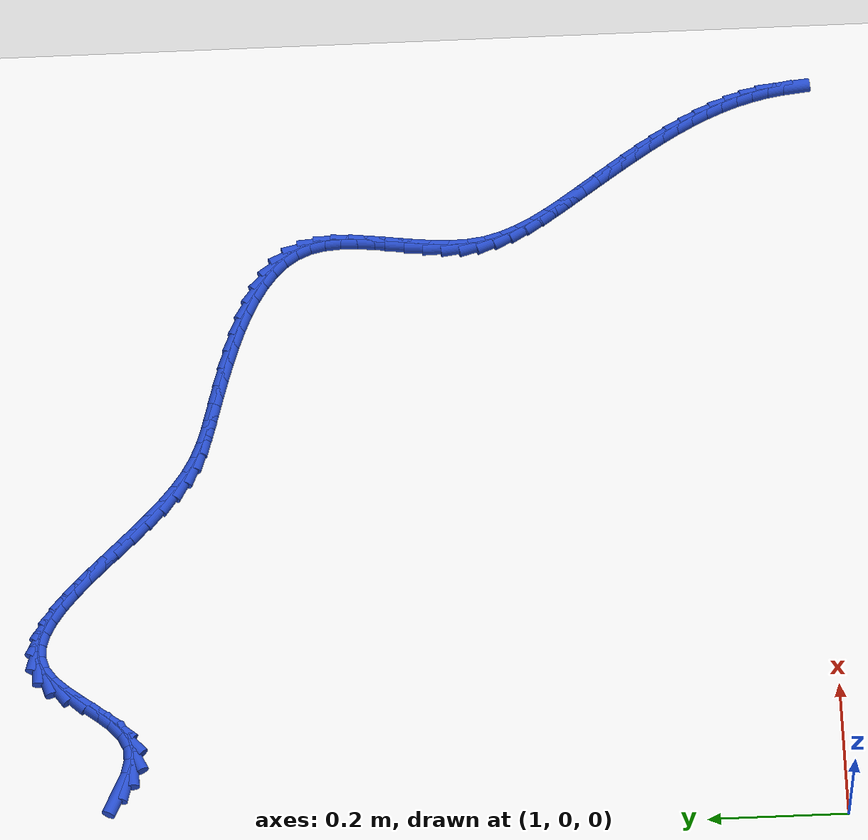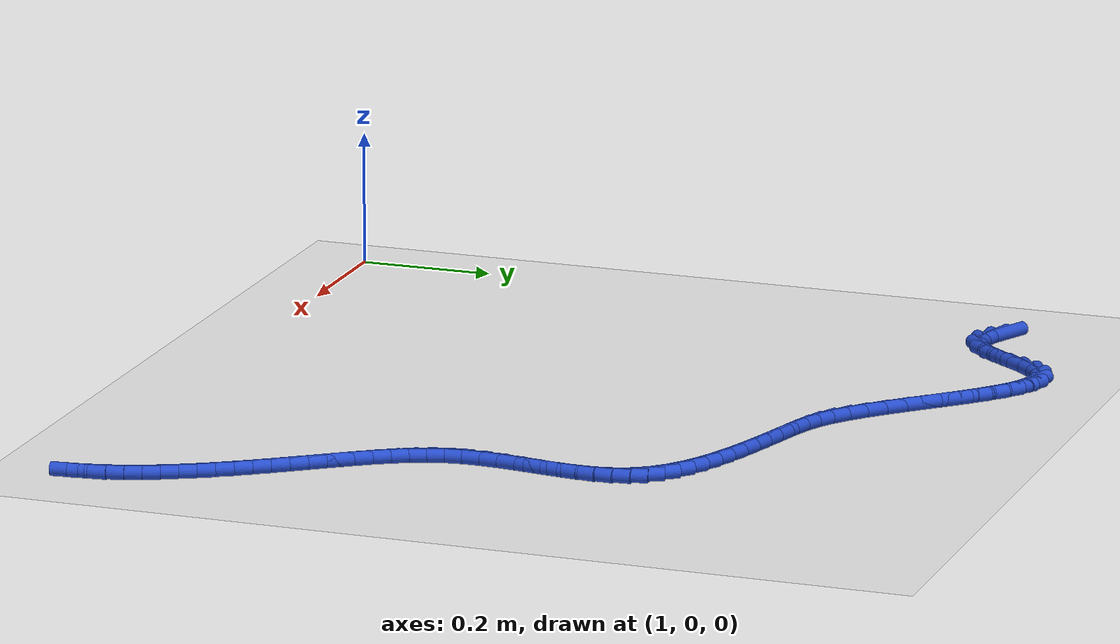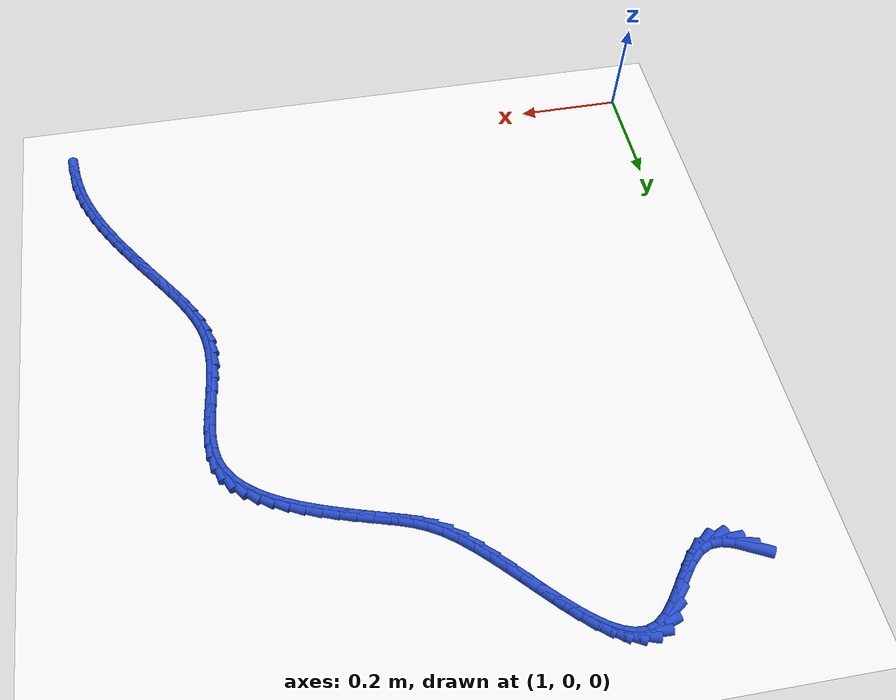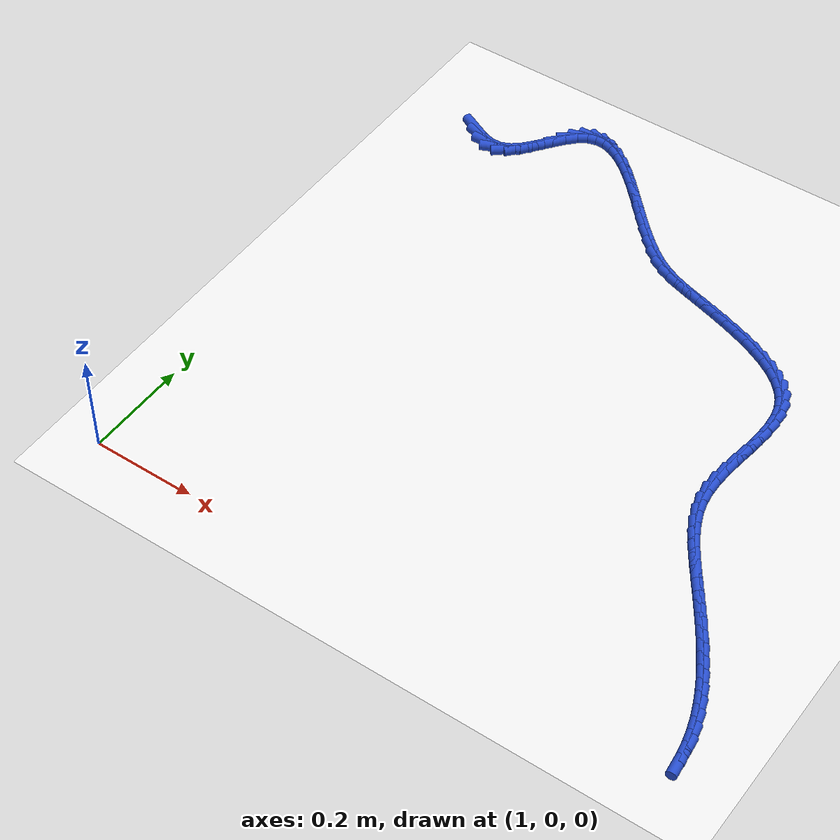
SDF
<sdf version="1.6">
 <world name="default">
  <model name="ground_plane">
   <static>1</static>
   <link name="link">
    <collision name="collision">
     <geometry><plane><normal>0 0 1</normal><size>100 100</size></plane></geometry>
     <surface><friction><ode><mu>100</mu><mu2>50</mu2></ode></friction></surface>
    </collision>
    <visual name="visual">
     <cast_shadows>0</cast_shadows>
     <geometry><plane><normal>0 0 1</normal><size>100 100</size></plane></geometry>
     <material>
      <script><uri>file://media/materials/scripts/gazebo.material</uri><name>Gazebo/WhiteGlow</name></script>
     </material>
    </visual>
   </link>
  </model>
  <model name="line">
   <link name="link_69">
    <pose>1.078029919910692 1.0285719387729746 0.01 0 1.57 -0.45431052551628215</pose>
    <collision name="collision">
     <geometry><cylinder><radius>0.01</radius><length>0.08</length></cylinder></geometry>
    </collision>
    <visual name="visual">
     <material>
      <script><name>Gazebo/Blue</name><uri>file://media/materials/scripts/gazebo.material</uri></script>
     </material>
     <geometry><cylinder><radius>0.01</radius><length>0.08</length></cylinder></geometry>
    </visual>
   </link>
   <link name="link_70">
    <pose>1.1006368882453512 1.0175310900517718 0.01 0 1.57 -0.26403162958950593</pose>
    <collision name="collision">
     <geometry><cylinder><radius>0.01</radius><length>0.08</length></cylinder></geometry>
    </collision>
    <visual name="visual">
     <material>
      <script><name>Gazebo/Blue</name><uri>file://media/materials/scripts/gazebo.material</uri></script>
     </material>
     <geometry><cylinder><radius>0.01</radius><length>0.08</length></cylinder></geometry>
    </visual>
   </link>
   <link name="link_71">
    <pose>1.122388743227999 1.0116506253220996 0.01 0 1.57 0.0376220122311731</pose>
    <collision name="collision">
     <geometry><cylinder><radius>0.01</radius><length>0.08</length></cylinder></geometry>
    </collision>
    <visual name="visual">
     <material>
      <script><name>Gazebo/Blue</name><uri>file://media/materials/scripts/gazebo.material</uri></script>
     </material>
     <geometry><cylinder><radius>0.01</radius><length>0.08</length></cylinder></geometry>
    </visual>
   </link>
   <link name="link_72">
    <pose>1.1430919343534187 1.0124298887271217 0.01 0 1.57 0.4241845442379834</pose>
    <collision name="collision">
     <geometry><cylinder><radius>0.01</radius><length>0.08</length></cylinder></geometry>
    </collision>
    <visual name="visual">
     <material>
      <script><name>Gazebo/Blue</name><uri>file://media/materials/scripts/gazebo.material</uri></script>
     </material>
     <geometry><cylinder><radius>0.01</radius><length>0.08</length></cylinder></geometry>
    </visual>
   </link>
   <link name="link_73">
    <pose>1.1625707542399282 1.0212265438096948 0.01 0 1.57 0.7154694932736173</pose>
    <collision name="collision">
     <geometry><cylinder><radius>0.01</radius><length>0.08</length></cylinder></geometry>
    </collision>
    <visual name="visual">
     <material>
      <script><name>Gazebo/Blue</name><uri>file://media/materials/scripts/gazebo.material</uri></script>
     </material>
     <geometry><cylinder><radius>0.01</radius><length>0.08</length></cylinder></geometry>
    </visual>
   </link>
   <link name="link_74">
    <pose>1.1809287151039338 1.0371811534916233 0.01 0 1.57 0.8623224712732442</pose>
    <collision name="collision">
     <geometry><cylinder><radius>0.01</radius><length>0.08</length></cylinder></geometry>
    </collision>
    <visual name="visual">
     <material>
      <script><name>Gazebo/Blue</name><uri>file://media/materials/scripts/gazebo.material</uri></script>
     </material>
     <geometry><cylinder><radius>0.01</radius><length>0.08</length></cylinder></geometry>
    </visual>
   </link>
   <link name="link_75">
    <pose>1.1984907068357686 1.0576764650481187 0.01 0 1.57 0.9182277332515708</pose>
    <collision name="collision">
     <geometry><cylinder><radius>0.01</radius><length>0.08</length></cylinder></geometry>
    </collision>
    <visual name="visual">
     <material>
      <script><name>Gazebo/Blue</name><uri>file://media/materials/scripts/gazebo.material</uri></script>
     </material>
     <geometry><cylinder><radius>0.01</radius><length>0.08</length></cylinder></geometry>
    </visual>
   </link>
   <link name="link_76">
    <pose>1.2155876983083787 1.0800469565203614 0.01 0 1.57 0.9046228854170388</pose>
    <collision name="collision">
     <geometry><cylinder><radius>0.01</radius><length>0.08</length></cylinder></geometry>
    </collision>
    <visual name="visual">
     <material>
      <script><name>Gazebo/Blue</name><uri>file://media/materials/scripts/gazebo.material</uri></script>
     </material>
     <geometry><cylinder><radius>0.01</radius><length>0.08</length></cylinder></geometry>
    </visual>
   </link>
   <link name="link_77">
    <pose>1.2325506583947103 1.101627105949532 0.01 0 1.57 0.812723376417342</pose>
    <collision name="collision">
     <geometry><cylinder><radius>0.01</radius><length>0.08</length></cylinder></geometry>
    </collision>
    <visual name="visual">
     <material>
      <script><name>Gazebo/Blue</name><uri>file://media/materials/scripts/gazebo.material</uri></script>
     </material>
     <geometry><cylinder><radius>0.01</radius><length>0.08</length></cylinder></geometry>
    </visual>
   </link>
   <link name="link_78">
    <pose>1.2497105559677097 1.11975139137681 0.01 0 1.57 0.6005722531968354</pose>
    <collision name="collision">
     <geometry><cylinder><radius>0.01</radius><length>0.08</length></cylinder></geometry>
    </collision>
    <visual name="visual">
     <material>
      <script><name>Gazebo/Blue</name><uri>file://media/materials/scripts/gazebo.material</uri></script>
     </material>
     <geometry><cylinder><radius>0.01</radius><length>0.08</length></cylinder></geometry>
    </visual>
   </link>
   <link name="link_79">
    <pose>1.26738684605833 1.1318592475972244 0.01 0 1.57 0.2818731334515106</pose>
    <collision name="collision">
     <geometry><cylinder><radius>0.01</radius><length>0.08</length></cylinder></geometry>
    </collision>
    <visual name="visual">
     <material>
      <script><name>Gazebo/Blue</name><uri>file://media/materials/scripts/gazebo.material</uri></script>
     </material>
     <geometry><cylinder><radius>0.01</radius><length>0.08</length></cylinder></geometry>
    </visual>
   </link>
   <link name="link_80">
    <pose>1.2857044179222725 1.1371637130555101 0.01 0 1.57 -0.04270730599006626</pose>
    <collision name="collision">
     <geometry><cylinder><radius>0.01</radius><length>0.08</length></cylinder></geometry>
    </collision>
    <visual name="visual">
     <material>
      <script><name>Gazebo/Blue</name><uri>file://media/materials/scripts/gazebo.material</uri></script>
     </material>
     <geometry><cylinder><radius>0.01</radius><length>0.08</length></cylinder></geometry>
    </visual>
   </link>
   <link name="link_81">
    <pose>1.3046260996672308 1.1363551273466683 0.01 0 1.57 -0.3074407791411573</pose>
    <collision name="collision">
     <geometry><cylinder><radius>0.01</radius><length>0.08</length></cylinder></geometry>
    </collision>
    <visual name="visual">
     <material>
      <script><name>Gazebo/Blue</name><uri>file://media/materials/scripts/gazebo.material</uri></script>
     </material>
     <geometry><cylinder><radius>0.01</radius><length>0.08</length></cylinder></geometry>
    </visual>
   </link>
   <link name="link_82">
    <pose>1.3241097746555475 1.1301689048913672 0.01 0 1.57 -0.49615941338677133</pose>
    <collision name="collision">
     <geometry><cylinder><radius>0.01</radius><length>0.08</length></cylinder></geometry>
    </collision>
    <visual name="visual">
     <material>
      <script><name>Gazebo/Blue</name><uri>file://media/materials/scripts/gazebo.material</uri></script>
     </material>
     <geometry><cylinder><radius>0.01</radius><length>0.08</length></cylinder></geometry>
    </visual>
   </link>
   <link name="link_83">
    <pose>1.3441133262495661 1.1193404601102779 0.01 0 1.57 -0.6236598691198544</pose>
    <collision name="collision">
     <geometry><cylinder><radius>0.01</radius><length>0.08</length></cylinder></geometry>
    </collision>
    <visual name="visual">
     <material>
      <script><name>Gazebo/Blue</name><uri>file://media/materials/scripts/gazebo.material</uri></script>
     </material>
     <geometry><cylinder><radius>0.01</radius><length>0.08</length></cylinder></geometry>
    </visual>
   </link>
   <link name="link_84">
    <pose>1.3645946378116283 1.1046052074240673 0.01 0 1.57 -0.7080148838807767</pose>
    <collision name="collision">
     <geometry><cylinder><radius>0.01</radius><length>0.08</length></cylinder></geometry>
    </collision>
    <visual name="visual">
     <material>
      <script><name>Gazebo/Blue</name><uri>file://media/materials/scripts/gazebo.material</uri></script>
     </material>
     <geometry><cylinder><radius>0.01</radius><length>0.08</length></cylinder></geometry>
    </visual>
   </link>
   <link name="link_85">
    <pose>1.3855115927040782 1.0866985612534064 0.01 0 1.57 -0.762166229607625</pose>
    <collision name="collision">
     <geometry><cylinder><radius>0.01</radius><length>0.08</length></cylinder></geometry>
    </collision>
    <visual name="visual">
     <material>
      <script><name>Gazebo/Blue</name><uri>file://media/materials/scripts/gazebo.material</uri></script>
     </material>
     <geometry><cylinder><radius>0.01</radius><length>0.08</length></cylinder></geometry>
    </visual>
   </link>
   <link name="link_86">
    <pose>1.4068220742892577 1.0663559360189627 0.01 0 1.57 -0.7941222876967864</pose>
    <collision name="collision">
     <geometry><cylinder><radius>0.01</radius><length>0.08</length></cylinder></geometry>
    </collision>
    <visual name="visual">
     <material>
      <script><name>Gazebo/Blue</name><uri>file://media/materials/scripts/gazebo.material</uri></script>
     </material>
     <geometry><cylinder><radius>0.01</radius><length>0.08</length></cylinder></geometry>
    </visual>
   </link>
   <link name="link_87">
    <pose>1.428483965929511 1.0443127461414061 0.01 0 1.57 -0.80845245938409</pose>
    <collision name="collision">
     <geometry><cylinder><radius>0.01</radius><length>0.08</length></cylinder></geometry>
    </collision>
    <visual name="visual">
     <material>
      <script><name>Gazebo/Blue</name><uri>file://media/materials/scripts/gazebo.material</uri></script>
     </material>
     <geometry><cylinder><radius>0.01</radius><length>0.08</length></cylinder></geometry>
    </visual>
   </link>
   <link name="link_88">
    <pose>1.45045515098718 1.021304406041406 0.01 0 1.57 -0.8073777449323576</pose>
    <collision name="collision">
     <geometry><cylinder><radius>0.01</radius><length>0.08</length></cylinder></geometry>
    </collision>
    <visual name="visual">
     <material>
      <script><name>Gazebo/Blue</name><uri>file://media/materials/scripts/gazebo.material</uri></script>
     </material>
     <geometry><cylinder><radius>0.01</radius><length>0.08</length></cylinder></geometry>
    </visual>
   </link>
   <link name="link_89">
    <pose>1.4726935128246075 0.9980663301396312 0.01 0 1.57 -0.7913494246480318</pose>
    <collision name="collision">
     <geometry><cylinder><radius>0.01</radius><length>0.08</length></cylinder></geometry>
    </collision>
    <visual name="visual">
     <material>
      <script><name>Gazebo/Blue</name><uri>file://media/materials/scripts/gazebo.material</uri></script>
     </material>
     <geometry><cylinder><radius>0.01</radius><length>0.08</length></cylinder></geometry>
    </visual>
   </link>
   <link name="link_90">
    <pose>1.495156934804137 0.975333932856751 0.01 0 1.57 -0.7592346237853783</pose>
    <collision name="collision">
     <geometry><cylinder><radius>0.01</radius><length>0.08</length></cylinder></geometry>
    </collision>
    <visual name="visual">
     <material>
      <script><name>Gazebo/Blue</name><uri>file://media/materials/scripts/gazebo.material</uri></script>
     </material>
     <geometry><cylinder><radius>0.01</radius><length>0.08</length></cylinder></geometry>
    </visual>
   </link>
   <link name="link_91">
    <pose>1.5178033002881106 0.9538426286134337 0.01 0 1.57 -0.708193961958227</pose>
    <collision name="collision">
     <geometry><cylinder><radius>0.01</radius><length>0.08</length></cylinder></geometry>
    </collision>
    <visual name="visual">
     <material>
      <script><name>Gazebo/Blue</name><uri>file://media/materials/scripts/gazebo.material</uri></script>
     </material>
     <geometry><cylinder><radius>0.01</radius><length>0.08</length></cylinder></geometry>
    </visual>
   </link>
   <link name="link_92">
    <pose>1.5405904926388718 0.9343278318303494 0.01 0 1.57 -0.6333134699912337</pose>
    <collision name="collision">
     <geometry><cylinder><radius>0.01</radius><length>0.08</length></cylinder></geometry>
    </collision>
    <visual name="visual">
     <material>
      <script><name>Gazebo/Blue</name><uri>file://media/materials/scripts/gazebo.material</uri></script>
     </material>
     <geometry><cylinder><radius>0.01</radius><length>0.08</length></cylinder></geometry>
    </visual>
   </link>
   <link name="link_93">
    <pose>1.5634763952187631 0.9175249569281672 0.01 0 1.57 -0.5283515220598164</pose>
    <collision name="collision">
     <geometry><cylinder><radius>0.01</radius><length>0.08</length></cylinder></geometry>
    </collision>
    <visual name="visual">
     <material>
      <script><name>Gazebo/Blue</name><uri>file://media/materials/scripts/gazebo.material</uri></script>
     </material>
     <geometry><cylinder><radius>0.01</radius><length>0.08</length></cylinder></geometry>
    </visual>
   </link>
   <link name="link_94">
    <pose>1.5864279836241901 0.904128005778663 0.01 0 1.57 -0.4151997910029941</pose>
    <collision name="collision">
     <geometry><cylinder><radius>0.01</radius><length>0.08</length></cylinder></geometry>
    </collision>
    <visual name="visual">
     <material>
      <script><name>Gazebo/Blue</name><uri>file://media/materials/scripts/gazebo.material</uri></script>
     </material>
     <geometry><cylinder><radius>0.01</radius><length>0.08</length></cylinder></geometry>
    </visual>
   </link>
   <link name="link_95">
    <pose>1.609615218904772 0.8939064390518999 0.01 0 1.57 -0.3313717219436235</pose>
    <collision name="collision">
     <geometry><cylinder><radius>0.01</radius><length>0.08</length></cylinder></geometry>
    </collision>
    <visual name="visual">
     <material>
      <script><name>Gazebo/Blue</name><uri>file://media/materials/scripts/gazebo.material</uri></script>
     </material>
     <geometry><cylinder><radius>0.01</radius><length>0.08</length></cylinder></geometry>
    </visual>
   </link>
   <link name="link_96">
    <pose>1.6334076961231012 0.8857204410765483 0.01 0 1.57 -0.2875968599010426</pose>
    <collision name="collision">
     <geometry><cylinder><radius>0.01</radius><length>0.08</length></cylinder></geometry>
    </collision>
    <visual name="visual">
     <material>
      <script><name>Gazebo/Blue</name><uri>file://media/materials/scripts/gazebo.material</uri></script>
     </material>
     <geometry><cylinder><radius>0.01</radius><length>0.08</length></cylinder></geometry>
    </visual>
   </link>
   <link name="link_97">
    <pose>1.6581834289297088 0.878391840834631 0.01 0 1.57 -0.27969026245600886</pose>
    <collision name="collision">
     <geometry><cylinder><radius>0.01</radius><length>0.08</length></cylinder></geometry>
    </collision>
    <visual name="visual">
     <material>
      <script><name>Gazebo/Blue</name><uri>file://media/materials/scripts/gazebo.material</uri></script>
     </material>
     <geometry><cylinder><radius>0.01</radius><length>0.08</length></cylinder></geometry>
    </visual>
   </link>
   <link name="link_98">
    <pose>1.6841647653913872 0.870929507185116 0.01 0 1.57 -0.28628539322522095</pose>
    <collision name="collision">
     <geometry><cylinder><radius>0.01</radius><length>0.08</length></cylinder></geometry>
    </collision>
    <visual name="visual">
     <material>
      <script><name>Gazebo/Blue</name><uri>file://media/materials/scripts/gazebo.material</uri></script>
     </material>
     <geometry><cylinder><radius>0.01</radius><length>0.08</length></cylinder></geometry>
    </visual>
   </link>
   <link name="link_99">
    <pose>1.71100230743534 0.8630292901746104 0.01 0 1.57 -0.3022308721273343</pose>
    <collision name="collision">
     <geometry><cylinder><radius>0.01</radius><length>0.08</length></cylinder></geometry>
    </collision>
    <visual name="visual">
     <material>
      <script><name>Gazebo/Blue</name><uri>file://media/materials/scripts/gazebo.material</uri></script>
     </material>
     <geometry><cylinder><radius>0.01</radius><length>0.08</length></cylinder></geometry>
    </visual>
   </link>
   <link name="link_100">
    <pose>1.7382154242338481 0.8545447224777079 0.01 0 1.57 -0.327693702546688</pose>
    <collision name="collision">
     <geometry><cylinder><radius>0.01</radius><length>0.08</length></cylinder></geometry>
    </collision>
    <visual name="visual">
     <material>
      <script><name>Gazebo/Blue</name><uri>file://media/materials/scripts/gazebo.material</uri></script>
     </material>
     <geometry><cylinder><radius>0.01</radius><length>0.08</length></cylinder></geometry>
    </visual>
   </link>
   <link name="link_101">
    <pose>1.7653234849591948 0.8453293367690041 0.01 0 1.57 -0.36361374634172056</pose>
    <collision name="collision">
     <geometry><cylinder><radius>0.01</radius><length>0.08</length></cylinder></geometry>
    </collision>
    <visual name="visual">
     <material>
      <script><name>Gazebo/Blue</name><uri>file://media/materials/scripts/gazebo.material</uri></script>
     </material>
     <geometry><cylinder><radius>0.01</radius><length>0.08</length></cylinder></geometry>
    </visual>
   </link>
   <link name="link_102">
    <pose>1.791845858783662 0.8352366657230935 0.01 0 1.57 -0.41173098329343744</pose>
    <collision name="collision">
     <geometry><cylinder><radius>0.01</radius><length>0.08</length></cylinder></geometry>
    </collision>
    <visual name="visual">
     <material>
      <script><name>Gazebo/Blue</name><uri>file://media/materials/scripts/gazebo.material</uri></script>
     </material>
     <geometry><cylinder><radius>0.01</radius><length>0.08</length></cylinder></geometry>
    </visual>
   </link>
   <link name="link_103">
    <pose>1.8173019148795315 0.8241202420145706 0.01 0 1.57 -0.47469751136542615</pose>
    <collision name="collision">
     <geometry><cylinder><radius>0.01</radius><length>0.08</length></cylinder></geometry>
    </collision>
    <visual name="visual">
     <material>
      <script><name>Gazebo/Blue</name><uri>file://media/materials/scripts/gazebo.material</uri></script>
     </material>
     <geometry><cylinder><radius>0.01</radius><length>0.08</length></cylinder></geometry>
    </visual>
   </link>
   <link name="link_104">
    <pose>1.8412110224190865 0.81183359831803 0.01 0 1.57 -0.5562090809756202</pose>
    <collision name="collision">
     <geometry><cylinder><radius>0.01</radius><length>0.08</length></cylinder></geometry>
    </collision>
    <visual name="visual">
     <material>
      <script><name>Gazebo/Blue</name><uri>file://media/materials/scripts/gazebo.material</uri></script>
     </material>
     <geometry><cylinder><radius>0.01</radius><length>0.08</length></cylinder></geometry>
    </visual>
   </link>
   <link name="link_105">
    <pose>1.863092550574608 0.7982302673080669 0.01 0 1.57 -0.6609900829812859</pose>
    <collision name="collision">
     <geometry><cylinder><radius>0.01</radius><length>0.08</length></cylinder></geometry>
    </collision>
    <visual name="visual">
     <material>
      <script><name>Gazebo/Blue</name><uri>file://media/materials/scripts/gazebo.material</uri></script>
     </material>
     <geometry><cylinder><radius>0.01</radius><length>0.08</length></cylinder></geometry>
    </visual>
   </link>
   <link name="link_106">
    <pose>1.8824658685183793 0.7831637816592756 0.01 0 1.57 -0.7942190342086661</pose>
    <collision name="collision">
     <geometry><cylinder><radius>0.01</radius><length>0.08</length></cylinder></geometry>
    </collision>
    <visual name="visual">
     <material>
      <script><name>Gazebo/Blue</name><uri>file://media/materials/scripts/gazebo.material</uri></script>
     </material>
     <geometry><cylinder><radius>0.01</radius><length>0.08</length></cylinder></geometry>
    </visual>
   </link>
   <link name="link_107">
    <pose>1.8988503454226828 0.7664876740462512 0.01 0 1.57 -0.9596165590226253</pose>
    <collision name="collision">
     <geometry><cylinder><radius>0.01</radius><length>0.08</length></cylinder></geometry>
    </collision>
    <visual name="visual">
     <material>
      <script><name>Gazebo/Blue</name><uri>file://media/materials/scripts/gazebo.material</uri></script>
     </material>
     <geometry><cylinder><radius>0.01</radius><length>0.08</length></cylinder></geometry>
    </visual>
   </link>
   <link name="link_108">
    <pose>1.9117653504597993 0.7480554771435879 0.01 0 1.57 -1.1551589204724022</pose>
    <collision name="collision">
     <geometry><cylinder><radius>0.01</radius><length>0.08</length></cylinder></geometry>
    </collision>
    <visual name="visual">
     <material>
      <script><name>Gazebo/Blue</name><uri>file://media/materials/scripts/gazebo.material</uri></script>
     </material>
     <geometry><cylinder><radius>0.01</radius><length>0.08</length></cylinder></geometry>
    </visual>
   </link>
   <link name="link_109">
    <pose>1.9207387272177463 0.7277238237244839 0.01 0 1.57 -1.3479879740402188</pose>
    <collision name="collision">
     <geometry><cylinder><radius>0.01</radius><length>0.08</length></cylinder></geometry>
    </collision>
    <visual name="visual">
     <material>
      <script><name>Gazebo/Blue</name><uri>file://media/materials/scripts/gazebo.material</uri></script>
     </material>
     <geometry><cylinder><radius>0.01</radius><length>0.08</length></cylinder></geometry>
    </visual>
   </link>
   <link name="link_110">
    <pose>1.925769094524677 0.7055215648849474 0.01 0 1.57 -1.495479077379761</pose>
    <collision name="collision">
     <geometry><cylinder><radius>0.01</radius><length>0.08</length></cylinder></geometry>
    </collision>
    <visual name="visual">
     <material>
      <script><name>Gazebo/Blue</name><uri>file://media/materials/scripts/gazebo.material</uri></script>
     </material>
     <geometry><cylinder><radius>0.01</radius><length>0.08</length></cylinder></geometry>
    </visual>
   </link>
   <link name="link_111">
    <pose>1.9275638888533193 0.6817368503746081 0.01 0 1.57 1.543875025785545</pose>
    <collision name="collision">
     <geometry><cylinder><radius>0.01</radius><length>0.08</length></cylinder></geometry>
    </collision>
    <visual name="visual">
     <material>
      <script><name>Gazebo/Blue</name><uri>file://media/materials/scripts/gazebo.material</uri></script>
     </material>
     <geometry><cylinder><radius>0.01</radius><length>0.08</length></cylinder></geometry>
    </visual>
   </link>
   <link name="link_112">
    <pose>1.9268891430539878 0.6566792655858616 0.01 0 1.57 1.4796516496760312</pose>
    <collision name="collision">
     <geometry><cylinder><radius>0.01</radius><length>0.08</length></cylinder></geometry>
    </collision>
    <visual name="visual">
     <material>
      <script><name>Gazebo/Blue</name><uri>file://media/materials/scripts/gazebo.material</uri></script>
     </material>
     <geometry><cylinder><radius>0.01</radius><length>0.08</length></cylinder></geometry>
    </visual>
   </link>
   <link name="link_113">
    <pose>1.9245108899769967 0.6306583959111041 0.01 0 1.57 1.4471277220998988</pose>
    <collision name="collision">
     <geometry><cylinder><radius>0.01</radius><length>0.08</length></cylinder></geometry>
    </collision>
    <visual name="visual">
     <material>
      <script><name>Gazebo/Blue</name><uri>file://media/materials/scripts/gazebo.material</uri></script>
     </material>
     <geometry><cylinder><radius>0.01</radius><length>0.08</length></cylinder></geometry>
    </visual>
   </link>
   <link name="link_114">
    <pose>1.9211951624726613 0.6039838267427319 0.01 0 1.57 1.442440794301067</pose>
    <collision name="collision">
     <geometry><cylinder><radius>0.01</radius><length>0.08</length></cylinder></geometry>
    </collision>
    <visual name="visual">
     <material>
      <script><name>Gazebo/Blue</name><uri>file://media/materials/scripts/gazebo.material</uri></script>
     </material>
     <geometry><cylinder><radius>0.01</radius><length>0.08</length></cylinder></geometry>
    </visual>
   </link>
   <link name="link_115">
    <pose>1.917707993391295 0.5769651434731404 0.01 0 1.57 1.464279218975755</pose>
    <collision name="collision">
     <geometry><cylinder><radius>0.01</radius><length>0.08</length></cylinder></geometry>
    </collision>
    <visual name="visual">
     <material>
      <script><name>Gazebo/Blue</name><uri>file://media/materials/scripts/gazebo.material</uri></script>
     </material>
     <geometry><cylinder><radius>0.01</radius><length>0.08</length></cylinder></geometry>
    </visual>
   </link>
   <link name="link_116">
    <pose>1.914815415583213 0.549911931494726 0.01 0 1.57 1.5136495352313992</pose>
    <collision name="collision">
     <geometry><cylinder><radius>0.01</radius><length>0.08</length></cylinder></geometry>
    </collision>
    <visual name="visual">
     <material>
      <script><name>Gazebo/Blue</name><uri>file://media/materials/scripts/gazebo.material</uri></script>
     </material>
     <geometry><cylinder><radius>0.01</radius><length>0.08</length></cylinder></geometry>
    </visual>
   </link>
   <link name="link_117">
    <pose>1.9132834618987293 0.5231337761998837 0.01 0 1.57 -1.5480960066869869</pose>
    <collision name="collision">
     <geometry><cylinder><radius>0.01</radius><length>0.08</length></cylinder></geometry>
    </collision>
    <visual name="visual">
     <material>
      <script><name>Gazebo/Blue</name><uri>file://media/materials/scripts/gazebo.material</uri></script>
     </material>
     <geometry><cylinder><radius>0.01</radius><length>0.08</length></cylinder></geometry>
    </visual>
   </link>
   <link name="link_118">
    <pose>1.9138781651881582 0.4969402629810105 0.01 0 1.57 -1.4341403618495605</pose>
    <collision name="collision">
     <geometry><cylinder><radius>0.01</radius><length>0.08</length></cylinder></geometry>
    </collision>
    <visual name="visual">
     <material>
      <script><name>Gazebo/Blue</name><uri>file://media/materials/scripts/gazebo.material</uri></script>
     </material>
     <geometry><cylinder><radius>0.01</radius><length>0.08</length></cylinder></geometry>
    </visual>
   </link>
   <link name="link_119">
    <pose>1.9173575589857932 0.47163798122520595 0.01 0 1.57 -1.3035309817347698</pose>
    <collision name="collision">
     <geometry><cylinder><radius>0.01</radius><length>0.08</length></cylinder></geometry>
    </collision>
    <visual name="visual">
     <material>
      <script><name>Gazebo/Blue</name><uri>file://media/materials/scripts/gazebo.material</uri></script>
     </material>
     <geometry><cylinder><radius>0.01</radius><length>0.08</length></cylinder></geometry>
    </visual>
   </link>
   <link name="link_120">
    <pose>1.9240062982687853 0.44735622457822294 0.01 0 1.57 -1.1898986130963538</pose>
    <collision name="collision">
     <geometry><cylinder><radius>0.01</radius><length>0.08</length></cylinder></geometry>
    </collision>
    <visual name="visual">
     <material>
      <script><name>Gazebo/Blue</name><uri>file://media/materials/scripts/gazebo.material</uri></script>
     </material>
     <geometry><cylinder><radius>0.01</radius><length>0.08</length></cylinder></geometry>
    </visual>
   </link>
   <link name="link_121">
    <pose>1.9333790601767684 0.42395088612738874 0.01 0 1.57 -1.0986930959425407</pose>
    <collision name="collision">
     <geometry><cylinder><radius>0.01</radius><length>0.08</length></cylinder></geometry>
    </collision>
    <visual name="visual">
     <material>
      <script><name>Gazebo/Blue</name><uri>file://media/materials/scripts/gazebo.material</uri></script>
     </material>
     <geometry><cylinder><radius>0.01</radius><length>0.08</length></cylinder></geometry>
    </visual>
   </link>
   <link name="link_122">
    <pose>1.9449681653434578 0.4012545044105314 0.01 0 1.57 -1.0302163013827483</pose>
    <collision name="collision">
     <geometry><cylinder><radius>0.01</radius><length>0.08</length></cylinder></geometry>
    </collision>
    <visual name="visual">
     <material>
      <script><name>Gazebo/Blue</name><uri>file://media/materials/scripts/gazebo.material</uri></script>
     </material>
     <geometry><cylinder><radius>0.01</radius><length>0.08</length></cylinder></geometry>
    </visual>
   </link>
   <link name="link_123">
    <pose>1.9582659344025695 0.3790996179654802 0.01 0 1.57 -0.9834874317425544</pose>
    <collision name="collision">
     <geometry><cylinder><radius>0.01</radius><length>0.08</length></cylinder></geometry>
    </collision>
    <visual name="visual">
     <material>
      <script><name>Gazebo/Blue</name><uri>file://media/materials/scripts/gazebo.material</uri></script>
     </material>
     <geometry><cylinder><radius>0.01</radius><length>0.08</length></cylinder></geometry>
    </visual>
   </link>
   <link name="link_124">
    <pose>1.9727646879878202 0.3573187653300631 0.01 0 1.57 -0.9572741536501398</pose>
    <collision name="collision">
     <geometry><cylinder><radius>0.01</radius><length>0.08</length></cylinder></geometry>
    </collision>
    <visual name="visual">
     <material>
      <script><name>Gazebo/Blue</name><uri>file://media/materials/scripts/gazebo.material</uri></script>
     </material>
     <geometry><cylinder><radius>0.01</radius><length>0.08</length></cylinder></geometry>
    </visual>
   </link>
   <link name="link_125">
    <pose>1.987956746732925 0.33574448504210896 0.01 0 1.57 -0.9491356092740024</pose>
    <collision name="collision">
     <geometry><cylinder><radius>0.01</radius><length>0.08</length></cylinder></geometry>
    </collision>
    <visual name="visual">
     <material>
      <script><name>Gazebo/Blue</name><uri>file://media/materials/scripts/gazebo.material</uri></script>
     </material>
     <geometry><cylinder><radius>0.01</radius><length>0.08</length></cylinder></geometry>
    </visual>
   </link>
   <link name="link_126">
    <pose>2.003374253900681 0.3142242507689127 0.01 0 1.57 -0.949565869987309</pose>
    <collision name="collision">
     <geometry><cylinder><radius>0.01</radius><length>0.08</length></cylinder></geometry>
    </collision>
    <visual name="visual">
     <material>
      <script><name>Gazebo/Blue</name><uri>file://media/materials/scripts/gazebo.material</uri></script>
     </material>
     <geometry><cylinder><radius>0.01</radius><length>0.08</length></cylinder></geometry>
    </visual>
   </link>
   <link name="link_127">
    <pose>2.0187849881669853 0.2926939091828445 0.01 0 1.57 -0.9551858945511581</pose>
    <collision name="collision">
     <geometry><cylinder><radius>0.01</radius><length>0.08</length></cylinder></geometry>
    </collision>
    <visual name="visual">
     <material>
      <script><name>Gazebo/Blue</name><uri>file://media/materials/scripts/gazebo.material</uri></script>
     </material>
     <geometry><cylinder><radius>0.01</radius><length>0.08</length></cylinder></geometry>
    </visual>
   </link>
   <link name="link_128">
    <pose>2.034043079443917 0.27112169223373545 0.01 0 1.57 -0.9660595139988096</pose>
    <collision name="collision">
     <geometry><cylinder><radius>0.01</radius><length>0.08</length></cylinder></geometry>
    </collision>
    <visual name="visual">
     <material>
      <script><name>Gazebo/Blue</name><uri>file://media/materials/scripts/gazebo.material</uri></script>
     </material>
     <geometry><cylinder><radius>0.01</radius><length>0.08</length></cylinder></geometry>
    </visual>
   </link>
   <link name="link_129">
    <pose>2.0490027879646697 0.249475880747213 0.01 0 1.57 -0.9823216671733643</pose>
    <collision name="collision">
     <geometry><cylinder><radius>0.01</radius><length>0.08</length></cylinder></geometry>
    </collision>
    <visual name="visual">
     <material>
      <script><name>Gazebo/Blue</name><uri>file://media/materials/scripts/gazebo.material</uri></script>
     </material>
     <geometry><cylinder><radius>0.01</radius><length>0.08</length></cylinder></geometry>
    </visual>
   </link>
   <link name="link_130">
    <pose>2.0635183739624345 0.2277247555489043 0.01 0 1.57 -1.0041680577509067</pose>
    <collision name="collision">
     <geometry><cylinder><radius>0.01</radius><length>0.08</length></cylinder></geometry>
    </collision>
    <visual name="visual">
     <material>
      <script><name>Gazebo/Blue</name><uri>file://media/materials/scripts/gazebo.material</uri></script>
     </material>
     <geometry><cylinder><radius>0.01</radius><length>0.08</length></cylinder></geometry>
    </visual>
   </link>
   <link name="link_131">
    <pose>2.0774440976704036 0.20583659746443636 0.01 0 1.57 -1.0318457274198887</pose>
    <collision name="collision">
     <geometry><cylinder><radius>0.01</radius><length>0.08</length></cylinder></geometry>
    </collision>
    <visual name="visual">
     <material>
      <script><name>Gazebo/Blue</name><uri>file://media/materials/scripts/gazebo.material</uri></script>
     </material>
     <geometry><cylinder><radius>0.01</radius><length>0.08</length></cylinder></geometry>
    </visual>
   </link>
   <link name="link_132">
    <pose>2.09063421932177 0.18377968731943722 0.01 0 1.57 -1.0656373594376</pose>
    <collision name="collision">
     <geometry><cylinder><radius>0.01</radius><length>0.08</length></cylinder></geometry>
    </collision>
    <visual name="visual">
     <material>
      <script><name>Gazebo/Blue</name><uri>file://media/materials/scripts/gazebo.material</uri></script>
     </material>
     <geometry><cylinder><radius>0.01</radius><length>0.08</length></cylinder></geometry>
    </visual>
   </link>
   <link name="link_133">
    <pose>2.102942999149725 0.16152230593953376 0.01 0 1.57 -1.1058365325949686</pose>
    <collision name="collision">
     <geometry><cylinder><radius>0.01</radius><length>0.08</length></cylinder></geometry>
    </collision>
    <visual name="visual">
     <material>
      <script><name>Gazebo/Blue</name><uri>file://media/materials/scripts/gazebo.material</uri></script>
     </material>
     <geometry><cylinder><radius>0.01</radius><length>0.08</length></cylinder></geometry>
    </visual>
   </link>
   <link name="link_134">
    <pose>2.114224697387461 0.1390327341503534 0.01 0 1.57 -1.1527107868874276</pose>
    <collision name="collision">
     <geometry><cylinder><radius>0.01</radius><length>0.08</length></cylinder></geometry>
    </collision>
    <visual name="visual">
     <material>
      <script><name>Gazebo/Blue</name><uri>file://media/materials/scripts/gazebo.material</uri></script>
     </material>
     <geometry><cylinder><radius>0.01</radius><length>0.08</length></cylinder></geometry>
    </visual>
   </link>
   <link name="link_135">
    <pose>2.124333574268171 0.11627925277752296 0.01 0 1.57 -1.2064498255437663</pose>
    <collision name="collision">
     <geometry><cylinder><radius>0.01</radius><length>0.08</length></cylinder></geometry>
    </collision>
    <visual name="visual">
     <material>
      <script><name>Gazebo/Blue</name><uri>file://media/materials/scripts/gazebo.material</uri></script>
     </material>
     <geometry><cylinder><radius>0.01</radius><length>0.08</length></cylinder></geometry>
    </visual>
   </link>
   <link name="link_136">
    <pose>2.1331238900250455 0.09323014264667051 0.01 0 1.57 -1.2670982483816187</pose>
    <collision name="collision">
     <geometry><cylinder><radius>0.01</radius><length>0.08</length></cylinder></geometry>
    </collision>
    <visual name="visual">
     <material>
      <script><name>Gazebo/Blue</name><uri>file://media/materials/scripts/gazebo.material</uri></script>
     </material>
     <geometry><cylinder><radius>0.01</radius><length>0.08</length></cylinder></geometry>
    </visual>
   </link>
   <link name="link_137">
    <pose>2.1404499048912777 0.06985368458342305 0.01 0 1.57 -1.3340506957802147</pose>
    <collision name="collision">
     <geometry><cylinder><radius>0.01</radius><length>0.08</length></cylinder></geometry>
    </collision>
    <visual name="visual">
     <material>
      <script><name>Gazebo/Blue</name><uri>file://media/materials/scripts/gazebo.material</uri></script>
     </material>
     <geometry><cylinder><radius>0.01</radius><length>0.08</length></cylinder></geometry>
    </visual>
   </link>
   <link name="link_138">
    <pose>2.1461760718703253 0.046120262107932596 0.01 0 1.57 -1.4004830046822607</pose>
    <collision name="collision">
     <geometry><cylinder><radius>0.01</radius><length>0.08</length></cylinder></geometry>
    </collision>
    <visual name="visual">
     <material>
      <script><name>Gazebo/Blue</name><uri>file://media/materials/scripts/gazebo.material</uri></script>
     </material>
     <geometry><cylinder><radius>0.01</radius><length>0.08</length></cylinder></geometry>
    </visual>
   </link>
   <link name="link_139">
    <pose>2.150318823488241 0.022031611012766697 0.01 0 1.57 -1.4609736733846082</pose>
    <collision name="collision">
     <geometry><cylinder><radius>0.01</radius><length>0.08</length></cylinder></geometry>
    </collision>
    <visual name="visual">
     <material>
      <script><name>Gazebo/Blue</name><uri>file://media/materials/scripts/gazebo.material</uri></script>
     </material>
     <geometry><cylinder><radius>0.01</radius><length>0.08</length></cylinder></geometry>
    </visual>
   </link>
  </model>
 </world>
</sdf>
